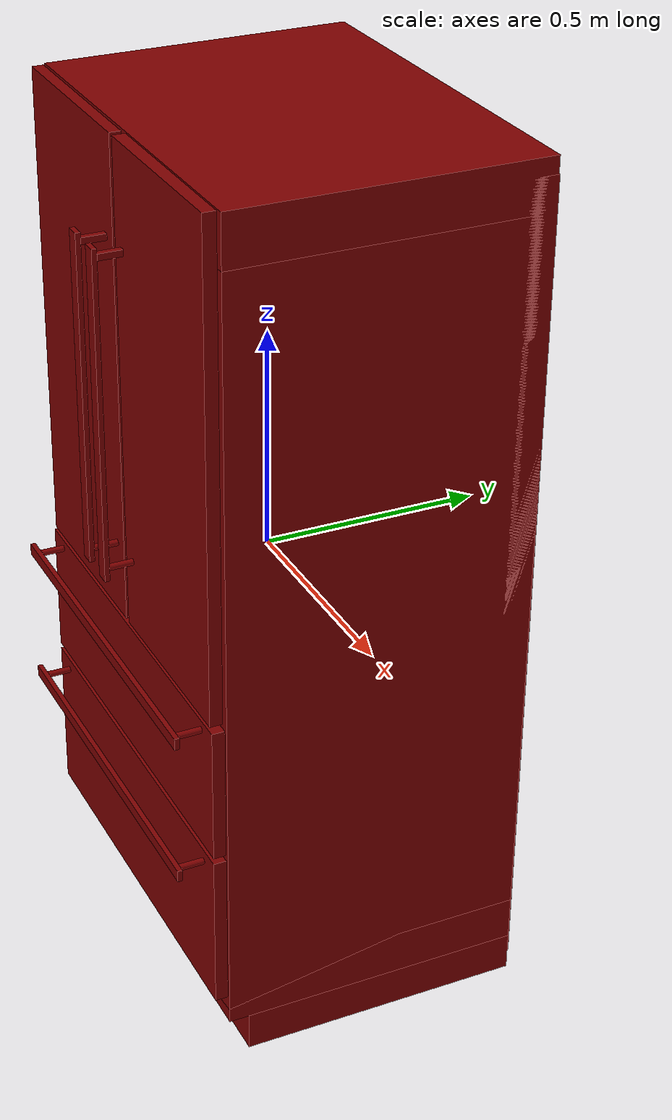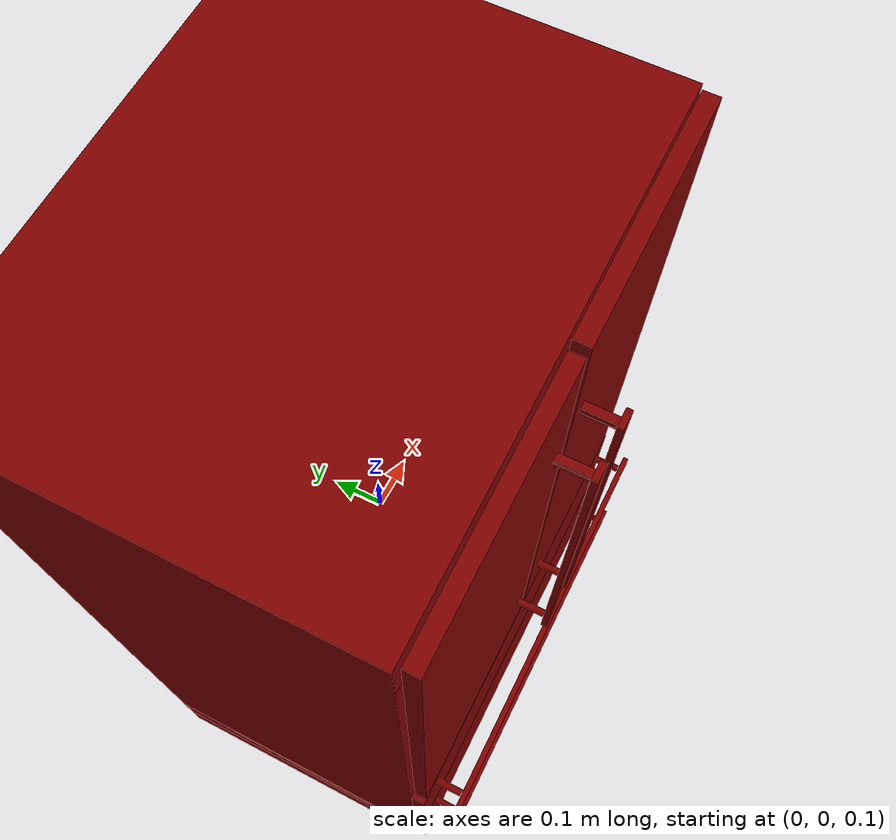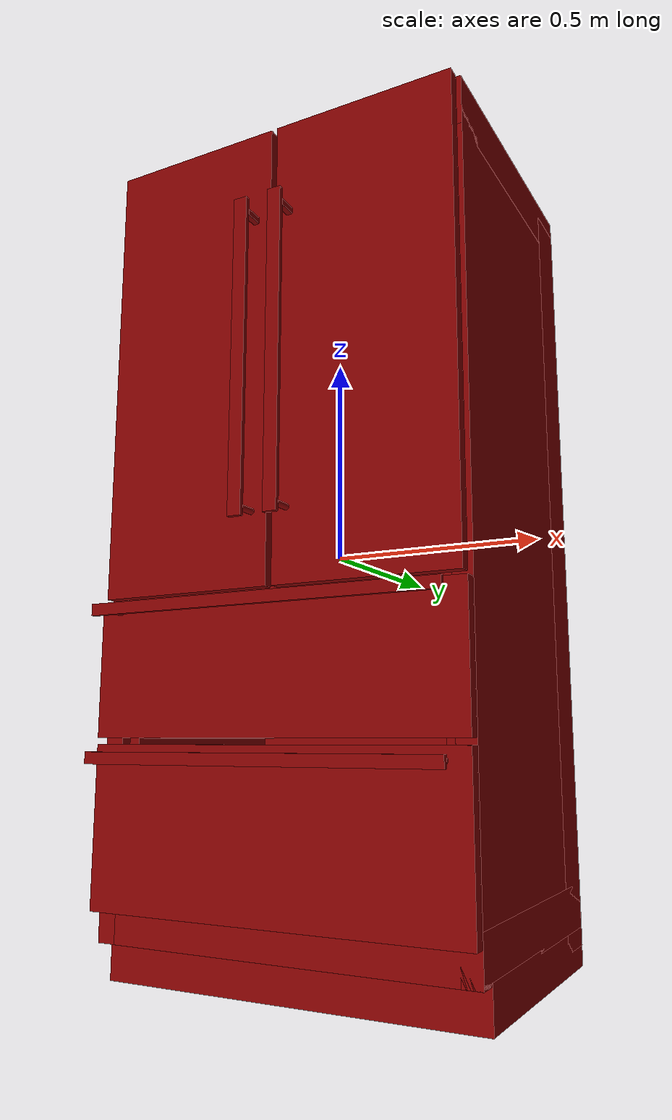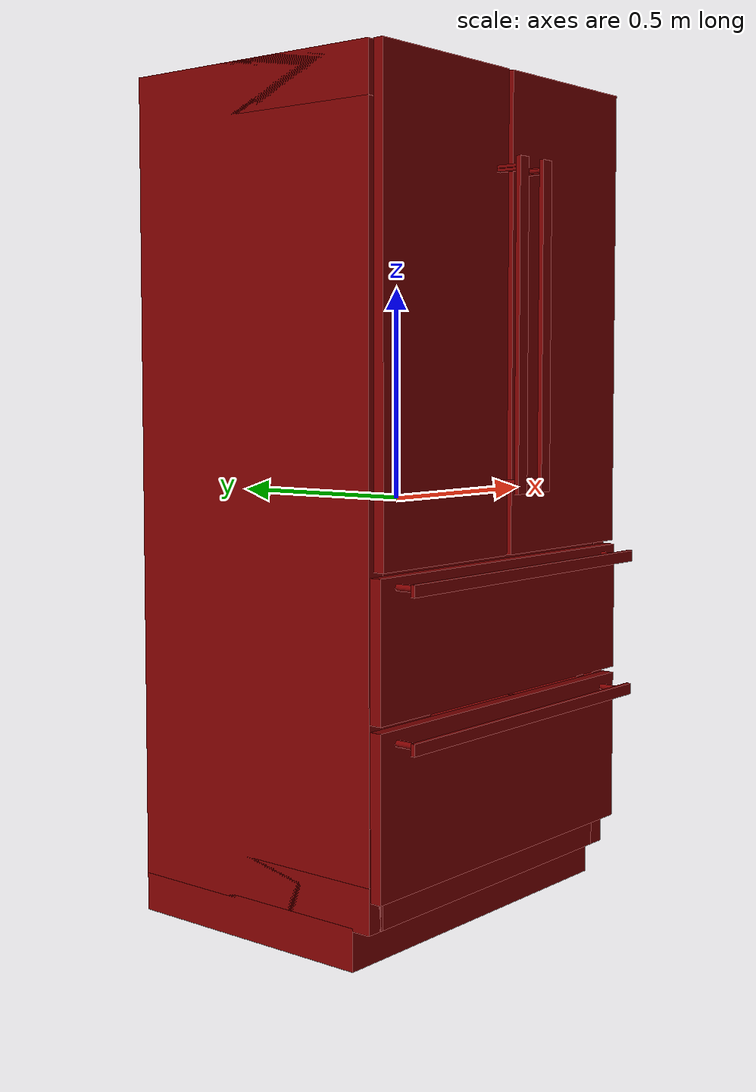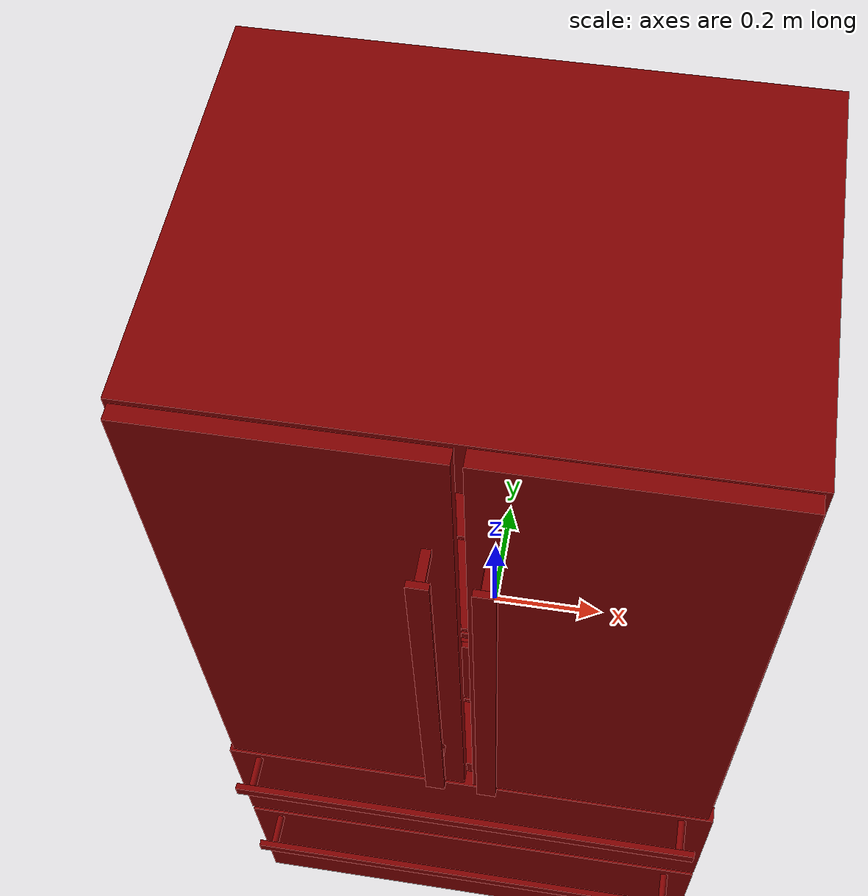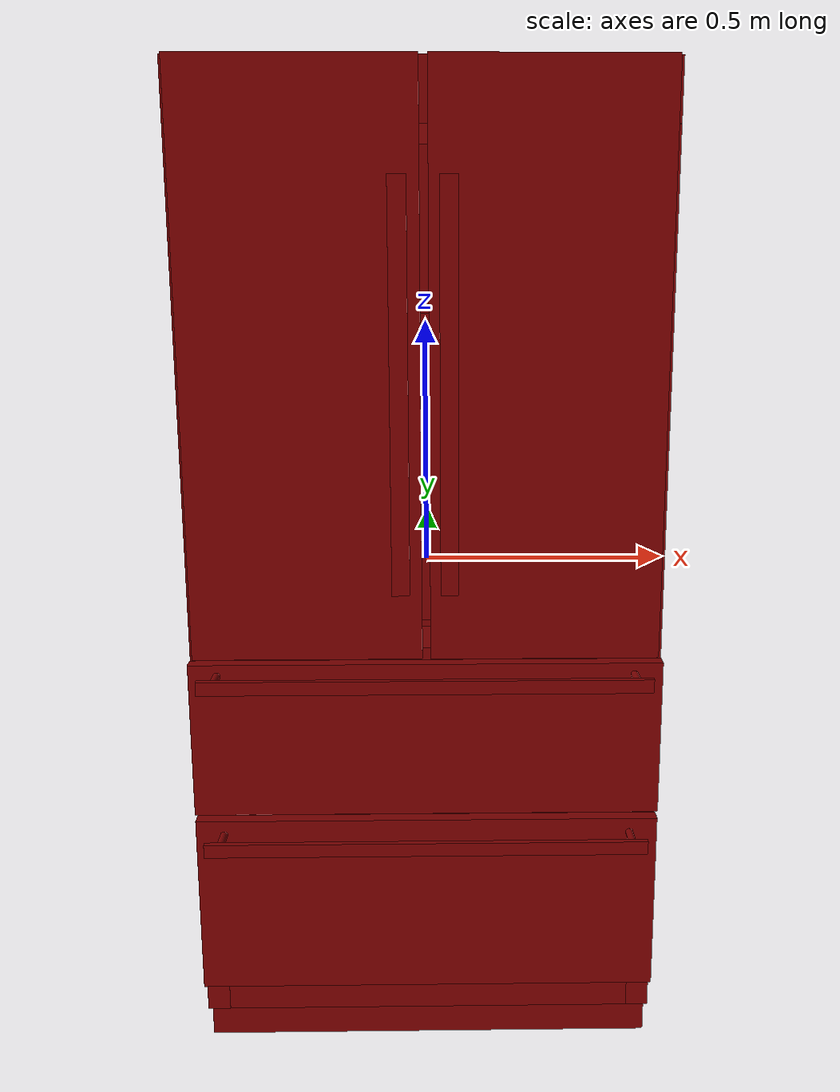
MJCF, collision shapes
<?xml version='1.0' encoding='UTF-8'?>
<mujoco model="model">
  <option timestep="0.002" gravity="0.0 0.0 -9.81"/>
  <compiler angle="radian"/>
  <asset>
    <mesh file="visuals/freezer0.obj" name="freezer0_vis"/>
    <mesh file="visuals/freezer1.obj" name="freezer1_vis"/>
    <mesh file="visuals/fridge_drawer0.obj" name="fridge_drawer0_vis"/>
    <mesh file="visuals/fridge_left_door.obj" name="fridge_left_door_vis"/>
    <mesh file="visuals/fridge_left_door_Clear.obj" name="fridge_left_door_Clear_vis"/>
    <mesh file="visuals/fridge_right_door.obj" name="fridge_right_door_vis"/>
    <mesh file="visuals/fridge_right_door_Clear.obj" name="fridge_right_door_Clear_vis"/>
    <mesh file="visuals/Body001.obj" name="Body001_vis"/>
    <mesh file="visuals/Body001_Clear.obj" name="Body001_Clear_vis"/>
    <texture file="visuals/T_BC001.png" name="Body001_material" type="2d"/>
    <material name="Body001_material" rgba="1 1 1 1.0" texture="Body001_material" shininess="0.141421377658844" specular="5"/>
    <texture file="visuals/T_BC001.png" name="freezer0_material" type="2d"/>
    <material name="freezer0_material" rgba="1 1 1 1.0" texture="freezer0_material" shininess="0.141421377658844" specular="5"/>
    <texture file="visuals/T_BC001.png" name="freezer1_material" type="2d"/>
    <material name="freezer1_material" rgba="1 1 1 1.0" texture="freezer1_material" shininess="0.141421377658844" specular="5"/>
    <texture file="visuals/T_BC001.png" name="fridge_drawer0_material" type="2d"/>
    <material name="fridge_drawer0_material" rgba="1 1 1 1.0" texture="fridge_drawer0_material" shininess="0.141421377658844" specular="5"/>
    <texture file="visuals/T_BC001.png" name="fridge_left_door_material" type="2d"/>
    <material name="fridge_left_door_material" rgba="1 1 1 1.0" texture="fridge_left_door_material" shininess="0.141421377658844" specular="5"/>
    <material name="fridge_left_door_Clear_material" rgba="0.5882353186607361 0.5882353186607361 0.5882353186607361 0.75" shininess="0.141421377658844" specular="0.3103448502657381"/>
    <texture file="visuals/T_BC001.png" name="fridge_right_door_material" type="2d"/>
    <material name="fridge_right_door_material" rgba="1 1 1 1.0" texture="fridge_right_door_material" shininess="0.141421377658844" specular="5"/>
    <material name="fridge_right_door_Clear_material" rgba="0.5882353186607361 0.5882353186607361 0.5882353186607361 0.75" shininess="0.141421377658844" specular="0.3103448502657381"/>
    <material name="Body001_Clear_material" rgba="0.5882353186607361 0.5882353186607361 0.5882353186607361 0.75" shininess="0.141421377658844" specular="0.3103448502657381"/>
  </asset>
  <default>
    <default class="visual">
      <geom conaffinity="0" contype="0" group="1" type="mesh"/>
    </default>
    <default class="collision">
      <geom group="0" rgba="0.5 0 0 0.5"/>
    </default>
    <default class="spawn">
      <geom group="0" rgba="1 1 1 0.5" contype="0" conaffinity="0"/>
      <site group="0" rgba="1 1 1 0.5"/>
    </default>
    <default class="region">
      <geom group="1" conaffinity="0" contype="0" rgba="0 1 0 0"/>
    </default>
  </default>
  <worldbody>
    <body>
      <body name="object">
        <geom mesh="Body001_vis" type="mesh" solimp="0.998 0.998 0.001" solref="0.001 1" friction="0.95 0.3 0.1" class="visual" material="Body001_material"/>
        <geom class="collision" type="box" pos="-0.00000499 0.06904030 -0.92711384" size="0.45515915751457214 0.3218735456466675 0.04788675159215927" quat="1.0 0.0 0.0 0.0"/>
        <geom class="collision" type="box" pos="-0.00000499 0.04634929 -0.83466471" size="0.45515915751457214 0.3445645868778229 0.05128457769751549" quat="1.0 0.0 0.0 0.0"/>
        <geom class="collision" type="box" pos="-0.40396725 0.05348483 -0.49318857" size="0.020160051062703133 0.3253287374973297 0.32951804995536804" quat="1.0 0.0 0.0 0.0"/>
        <geom class="collision" type="box" pos="0.43266017 0.04634929 0.04452716" size="0.022493960335850716 0.3445645868778229 0.9304587841033936" quat="1.0 0.0 0.0 0.0"/>
        <geom class="collision" type="box" pos="0.40167371 0.05809135 -0.49318857" size="0.020160051062703133 0.3299352526664734 0.32951825857162476" quat="1.0 0.0 0.0 0.0"/>
        <geom class="collision" type="box" pos="0.00339195 0.04474565 -0.14025397" size="0.43552544713020325 0.34082457423210144 0.03765507787466049" quat="1.0 0.0 0.0 0.0"/>
        <geom class="collision" type="box" pos="-0.43253189 0.04634929 0.04452704" size="0.022632241249084473 0.3445645868778229 0.9304593801498413" quat="1.0 0.0 0.0 0.0"/>
        <geom class="collision" type="box" pos="0.01544402 0.33064136 0.00424170" size="0.4397101402282715 0.06254047155380249 0.9322079420089722" quat="1.0 0.0 0.0 0.0"/>
        <geom class="collision" type="box" pos="-0.25343033 0.38506525 -0.71198882" size="0.07493435591459274 0.014434418641030788 0.03804784268140793" quat="1.0 0.0 0.0 0.0"/>
        <geom class="collision" type="box" pos="0.36359767 -0.00895843 -0.42745955" size="0.028669632971286774 0.24467833340168 0.007983226329088211" quat="1.0 0.0 0.0 0.0"/>
        <geom class="collision" type="box" pos="-0.36292549 -0.00895843 -0.42745955" size="0.028669632971286774 0.24467833340168 0.007983222603797913" quat="1.0 0.0 0.0 0.0"/>
        <geom class="collision" type="box" pos="0.40963034 -0.01564666 0.20274130" size="0.004460358526557684 0.25136658549308777 0.004059662111103535" quat="1.0 0.0 0.0 0.0"/>
        <geom class="collision" type="box" pos="0.40963034 -0.01564666 0.23742401" size="0.004460358526557684 0.25136658549308777 0.0040596602484583855" quat="1.0 0.0 0.0 0.0"/>
        <geom class="collision" type="box" pos="0.40963034 -0.01564666 0.27763568" size="0.004460358526557684 0.25136658549308777 0.004059658385813236" quat="1.0 0.0 0.0 0.0"/>
        <geom class="collision" type="box" pos="0.40963034 -0.01564666 0.31665259" size="0.004460358526557684 0.25136658549308777 0.004059656523168087" quat="1.0 0.0 0.0 0.0"/>
        <geom class="collision" type="box" pos="0.40963034 -0.01564666 0.35570436" size="0.004460358526557684 0.25136658549308777 0.004059654660522938" quat="1.0 0.0 0.0 0.0"/>
        <geom class="collision" type="box" pos="0.40963034 -0.01564666 0.39586570" size="0.004460358526557684 0.25136658549308777 0.0040596527978777885" quat="1.0 0.0 0.0 0.0"/>
        <geom class="collision" type="box" pos="0.40963034 -0.01564666 0.43635409" size="0.004460358526557684 0.25136658549308777 0.004059650935232639" quat="1.0 0.0 0.0 0.0"/>
        <geom class="collision" type="box" pos="0.40963034 -0.01564666 0.47698673" size="0.004460358526557684 0.25136658549308777 0.00405964907258749" quat="1.0 0.0 0.0 0.0"/>
        <geom class="collision" type="box" pos="0.40963034 -0.01564666 0.51714980" size="0.004460358526557684 0.25136658549308777 0.004059647209942341" quat="1.0 0.0 0.0 0.0"/>
        <geom class="collision" type="box" pos="0.40963034 -0.01564666 0.55876904" size="0.004460358526557684 0.25136658549308777 0.004059645347297192" quat="1.0 0.0 0.0 0.0"/>
        <geom class="collision" type="box" pos="0.40963034 -0.01564666 0.60047214" size="0.004460358526557684 0.25136658549308777 0.004059643484652042" quat="1.0 0.0 0.0 0.0"/>
        <geom class="collision" type="box" pos="0.40963034 -0.01564666 0.64060520" size="0.004460358526557684 0.25136658549308777 0.004059641622006893" quat="1.0 0.0 0.0 0.0"/>
        <geom class="collision" type="box" pos="-0.40944725 -0.01564666 0.20274130" size="0.004460358526557684 0.25136658549308777 0.004059639759361744" quat="1.0 0.0 0.0 0.0"/>
        <geom class="collision" type="box" pos="-0.40944725 -0.01564666 0.23742401" size="0.004460358526557684 0.25136658549308777 0.004059637896716595" quat="1.0 0.0 0.0 0.0"/>
        <geom class="collision" type="box" pos="-0.40944725 -0.01564666 0.27763568" size="0.004460358526557684 0.25136658549308777 0.0040596360340714455" quat="1.0 0.0 0.0 0.0"/>
        <geom class="collision" type="box" pos="-0.40944725 -0.01564666 0.31665259" size="0.004460358526557684 0.25136658549308777 0.004059634171426296" quat="1.0 0.0 0.0 0.0"/>
        <geom class="collision" type="box" pos="-0.40944725 -0.01564666 0.35570436" size="0.004460358526557684 0.25136658549308777 0.004059632308781147" quat="1.0 0.0 0.0 0.0"/>
        <geom class="collision" type="box" pos="-0.40944725 -0.01564666 0.39586570" size="0.004460358526557684 0.25136658549308777 0.004059630446135998" quat="1.0 0.0 0.0 0.0"/>
        <geom class="collision" type="box" pos="-0.40944725 -0.01564666 0.43635409" size="0.004460358526557684 0.25136658549308777 0.0040596285834908485" quat="1.0 0.0 0.0 0.0"/>
        <geom class="collision" type="box" pos="-0.40944725 -0.01564666 0.47698673" size="0.004460358526557684 0.25136658549308777 0.004059626720845699" quat="1.0 0.0 0.0 0.0"/>
        <geom class="collision" type="box" pos="-0.40944725 -0.01564666 0.51714980" size="0.004460358526557684 0.25136658549308777 0.00405962485820055" quat="1.0 0.0 0.0 0.0"/>
        <geom class="collision" type="box" pos="-0.40944725 -0.01564666 0.55876904" size="0.004460358526557684 0.25136658549308777 0.0040596225298941135" quat="1.0 0.0 0.0 0.0"/>
        <geom class="collision" type="box" pos="-0.40944725 -0.01564666 0.60047214" size="0.004460358526557684 0.25136658549308777 0.004059620667248964" quat="1.0 0.0 0.0 0.0"/>
        <geom class="collision" type="box" pos="-0.40944725 -0.01564666 0.64060520" size="0.004460358526557684 0.25136658549308777 0.004059618804603815" quat="1.0 0.0 0.0 0.0"/>
        <geom class="collision" type="box" pos="0.00066255 0.04652771 0.21273636" size="0.41955575346946716 0.22464393079280853 0.004984972067177296" quat="1.0 0.0 0.0 0.0"/>
        <geom class="collision" type="box" pos="0.00066255 0.04652771 0.53087722" size="0.41955575346946716 0.22464393079280853 0.004985080100595951" quat="1.0 0.0 0.0 0.0"/>
        <geom class="collision" type="box" pos="-0.00000497 0.04626915 0.91815971" size="0.45515912771224976 0.344644695520401 0.056838177144527435" quat="1.0 0.0 0.0 0.0"/>
        <geom class="collision" type="box" pos="0.36359767 -0.00895843 -0.77612943" size="0.028669632971286774 0.24467833340168 0.007983040995895863" quat="1.0 0.0 0.0 0.0"/>
        <geom class="collision" type="box" pos="-0.36292549 -0.00895843 -0.77586646" size="0.028669632971286774 0.24467833340168 0.007983037270605564" quat="1.0 0.0 0.0 0.0"/>
        <body name="freezer0">
          <geom class="region" name="reg_freezer0" type="box" pos="-5.0925000000007214e-05 -0.060570170000000007 -0.640081385" size="0.35843996499999997 0.23538181 0.11076126500000005"/>
          <joint axis="0.0 -1.0 0.0" pos="0.00000030 -0.10067922 -0.62808896" limited="true" name="freezer0_door_joint" range="0.0 0.4" type="slide" damping="1" frictionloss="1" armature=".01" stiffness="0.05"/>
          <geom mesh="freezer0_vis" type="mesh" solimp="0.998 0.998 0.001" solref="0.001 1" friction="0.95 0.3 0.1" class="visual" material="freezer0_material"/>
          <geom class="collision" type="cylinder" pos="0.40032012 -0.35740274 -0.47810481" size="0.0072952997870743275 0.028688108548521996" quat="0.7071067094802856 0.7071068286895752 0.0 0.0"/>
          <geom class="collision" type="cylinder" pos="-0.40030270 -0.35740274 -0.47813574" size="0.0072952997870743275 0.028688108548521996" quat="0.7071067094802856 0.7071068286895752 0.0 0.0"/>
          <geom class="collision" type="box" pos="-0.00074692 -0.39388210 -0.47834138" size="0.4277200698852539 0.005618114024400711 0.013253210112452507" quat="1.0 0.0 0.0 0.0"/>
          <geom class="collision" type="box" pos="-0.00000501 -0.31623912 -0.63169319" size="0.45515909790992737 0.014260848052799702 0.18250882625579834" quat="1.0 0.0 0.0 0.0"/>
          <geom class="collision" type="box" pos="-0.00028149 0.19010505 -0.64594276" size="0.37862294912338257 0.009886136278510094 0.12147098034620285" quat="1.0 0.0 0.0 0.0"/>
          <geom class="collision" type="box" pos="0.37078906 -0.06169401 -0.64594276" size="0.007692841812968254 0.2443414032459259 0.12147103995084763" quat="1.0 0.0 0.0 0.0"/>
          <geom class="collision" type="box" pos="-0.37097194 -0.06169401 -0.64594276" size="0.007385795470327139 0.2443414032459259 0.1214710921049118" quat="1.0 0.0 0.0 0.0"/>
          <geom class="collision" type="box" pos="-0.00022278 -0.05993126 -0.76237584" size="0.37868162989616394 0.24510401487350464 0.005039231386035681" quat="1.0 0.0 0.0 0.0"/>
        </body>
        <body name="freezer1">
          <geom class="region" name="reg_freezer1" type="box" pos="-5.0925000000007214e-05 -0.060570170000000007 -0.2961042" size="0.35843996499999997 0.23538181 0.10637835999999999"/>
          <joint axis="0.0 -1.0 0.0" pos="0.00000114 -0.10067925 -0.28205300" limited="true" name="freezer1_door_joint" range="0.0 0.4" type="slide" damping="1" frictionloss="1" armature=".01" stiffness="0.05"/>
          <geom mesh="freezer1_vis" type="mesh" solimp="0.998 0.998 0.001" solref="0.001 1" friction="0.95 0.3 0.1" class="visual" material="freezer1_material"/>
          <geom class="collision" type="box" pos="-0.00022278 -0.05993126 -0.41393949" size="0.37868162989616394 0.24510401487350464 0.00503923324868083" quat="1.0 0.0 0.0 0.0"/>
          <geom class="collision" type="box" pos="-0.37062331 -0.06169401 -0.30155505" size="0.007623842917382717 0.2443414032459259 0.11742319166660309" quat="1.0 0.0 0.0 0.0"/>
          <geom class="collision" type="box" pos="0.37147323 -0.06169401 -0.30155505" size="0.007008669897913933 0.2443414032459259 0.11742321401834488" quat="1.0 0.0 0.0 0.0"/>
          <geom class="collision" type="box" pos="-0.00028149 0.19010505 -0.30155505" size="0.37862294912338257 0.009886136278510094 0.11742324382066727" quat="1.0 0.0 0.0 0.0"/>
          <geom class="collision" type="box" pos="-0.00000501 -0.31623912 -0.27999012" size="0.45515909790992737 0.014260849915444851 0.15482380986213684" quat="1.0 0.0 0.0 0.0"/>
          <geom class="collision" type="box" pos="-0.00074691 -0.39388210 -0.14780122" size="0.4277200698852539 0.005618114024400711 0.013253247365355492" quat="1.0 0.0 0.0 0.0"/>
          <geom class="collision" type="cylinder" pos="-0.40030270 -0.35740274 -0.14759556" size="0.0072952997870743275 0.028688108548521996" quat="0.7071067094802856 0.7071068286895752 0.0 0.0"/>
          <geom class="collision" type="cylinder" pos="0.40032012 -0.35740274 -0.14756463" size="0.0072952997870743275 0.028688108548521996" quat="0.7071067094802856 0.7071068286895752 0.0 0.0"/>
        </body>
        <body name="fridge_drawer0">
          <geom class="region" name="reg_fridge_drawer0" type="box" pos="0.0011472349999999965 0.01543543 0.053015124999999996" size="0.36405786500000004 0.17307504 0.132494735"/>
          <joint axis="0.0 -1.0 0.0" pos="0.00002614 0.02300973 0.05023600" limited="true" name="fridge_drawer0_joint" range="0.0 0.4" type="slide" damping="1" frictionloss="1" armature=".01" stiffness="0.05"/>
          <geom mesh="fridge_drawer0_vis" type="mesh" solimp="0.998 0.998 0.001" solref="0.001 1" friction="0.95 0.3 0.1" class="visual" material="fridge_drawer0_material"/>
          <geom class="collision" type="box" pos="-0.00015614 0.00976306 -0.09072960" size="0.38103702664375305 0.18678787350654602 0.006469025742262602" quat="1.0 0.0 0.0 0.0"/>
          <geom class="collision" type="box" pos="0.37653208 0.01718861 0.05379304" size="0.006826857570558786 0.19421342015266418 0.13777042925357819" quat="1.0 0.0 0.0 0.0"/>
          <geom class="collision" type="box" pos="-0.37563592 0.01718861 0.05379304" size="0.006944672204554081 0.19421342015266418 0.13777042925357819" quat="1.0 0.0 0.0 0.0"/>
          <geom class="collision" type="box" pos="-0.00015614 0.20398035 0.05197353" size="0.38103702664375305 0.01000561099499464 0.13776469230651855" quat="1.0 0.0 0.0 0.0"/>
          <geom class="collision" type="box" pos="-0.25717538 -0.16836593 0.05197352" size="0.12401777505874634 0.005322454497218132 0.13776473701000214" quat="1.0 0.0 0.0 0.0"/>
          <geom class="collision" type="box" pos="0.24988668 -0.16836593 0.05197353" size="0.12520968914031982 0.005322454497218132 0.1377647966146469" quat="1.0 0.0 0.0 0.0"/>
          <geom class="collision" type="box" pos="-0.00449903 -0.16836593 0.02422493" size="0.13099119067192078 0.005322454497218132 0.11001637578010559" quat="1.0 0.0 0.0 0.0"/>
          <geom class="collision" type="box" pos="-0.00449903 -0.16836593 0.18105649" size="0.13099119067192078 0.005322454497218132 0.008587488904595375" quat="1.0 0.0 0.0 0.0"/>
        </body>
        <body name="fridge_left_door">
          <joint axis="0.0 0.0 -1.0" pos="-0.43957209 -0.31435257 0.42758631" limited="true" name="fridge_left_door_joint" range="0.0 1.5707963267948966" type="hinge" damping="1" frictionloss="1" armature=".01" stiffness="0.05"/>
          <geom mesh="fridge_left_door_vis" type="mesh" solimp="0.998 0.998 0.001" solref="0.001 1" friction="0.95 0.3 0.1" class="visual" material="fridge_left_door_material"/>
          <geom class="collision" type="box" pos="-0.20603823 -0.22966728 0.75564926" size="0.16827824711799622 0.04765574634075165 0.004487918224185705" quat="1.0 0.0 0.0 0.0"/>
          <geom class="collision" type="box" pos="-0.20603823 -0.22966728 0.46200850" size="0.16827824711799622 0.04765574634075165 0.004487957339733839" quat="1.0 0.0 0.0 0.0"/>
          <geom class="collision" type="box" pos="-0.22008301 -0.22966728 0.29002427" size="0.18232300877571106 0.04765574634075165 0.004487939644604921" quat="1.0 0.0 0.0 0.0"/>
          <geom class="collision" type="box" pos="-0.22633884 -0.31712097 0.43027373" size="0.21931464970111847 0.012689352035522461 0.5447179675102234" quat="1.0 0.0 0.0 0.0" name="fridge_left_door_main"/>
          <geom class="collision" type="box" pos="-0.04470110 -0.39379001 0.40204703" size="0.016507267951965332 0.005618056282401085 0.3714064359664917" quat="1.0 0.0 0.0 0.0" name="fridge_left_door_handle_main"/>
          <geom class="collision" type="box" pos="-0.04474109 -0.36019016 0.75063955" size="0.007295374758541584 0.03156791999936104 0.007295379880815744" quat="1.0 0.0 0.0 0.0"/>
          <geom class="collision" type="cylinder" pos="-0.04482481 -0.35725305 0.75063955" size="0.0072952997870743275 0.028630513697862625" quat="0.7071067094802856 0.7071068286895752 0.0 0.0" name="fridge_left_door_handle_1"/>
          <geom class="collision" type="cylinder" pos="-0.04493519 -0.35725305 0.05417837" size="0.0072952997870743275 0.028630513697862625" quat="0.7071067094802856 0.7071068286895752 0.0 0.0" name="fridge_left_door_handle_2"/>
          <geom class="collision" type="box" pos="-0.21982921 -0.18519008 0.76155185" size="0.1722746342420578 0.004940989892929792 0.019982893019914627" quat="1.0 0.0 0.0 0.0"/>
          <geom class="collision" type="box" pos="-0.04674715 -0.22398186 0.76155757" size="0.009039727970957756 0.03427697345614433 0.019487781450152397" quat="0.9945219159126282 0.0 0.0 0.10452846437692642"/>
          <geom class="collision" type="box" pos="-0.04146580 -0.24882865 0.79054653" size="0.009039727039635181 0.009492472745478153 0.011506680399179459" quat="0.9945219159126282 0.0 0.0 0.10452846437692642"/>
          <geom class="collision" type="box" pos="-0.04563043 -0.22923559 0.78853231" size="0.009039727039635181 0.010747063905000687 0.009492485783994198" quat="0.9945219159126282 0.0 0.0 0.10452846437692642"/>
          <geom class="collision" type="box" pos="-0.05007607 -0.20832052 0.78425836" size="0.009039727039635181 0.01101016066968441 0.005218466743826866" quat="0.9945219159126282 0.0 0.0 0.10452846437692642"/>
          <geom class="collision" type="box" pos="-0.05399551 -0.20113817 0.79940396" size="0.0024133336264640093 0.002413333859294653 0.01875714398920536" quat="0.7049269676208496 0.7049270272254944 0.05547899752855301 0.05547899752855301"/>
          <geom class="collision" type="box" pos="-0.22114658 -0.18520499 0.79940396" size="0.1683313250541687 0.0024133254773914814 0.00241334130987525" quat="1.0 0.0 0.0 0.0"/>
          <geom class="collision" type="box" pos="-0.39947664 -0.20191703 0.79949366" size="0.002413333859294653 0.002413333859294653 0.01649571768939495" quat="0.7032331824302673 0.7032331824302673 -0.07391279190778732 -0.07391278445720673"/>
          <geom class="collision" type="box" pos="-0.40195330 -0.21791926 0.79330002" size="0.0024133340921252966 0.0024133340921252966 0.004603476729243994" quat="0.12120170891284943 0.9871088862419128 -0.10374932736158371 -0.012738813646137714"/>
          <geom class="collision" type="box" pos="-0.05098117 -0.21791926 0.79332953" size="0.0024133340921252966 0.002413333859294653 0.004603412002325058" quat="0.12814365327358246 0.9838157296180725 -0.11195120215415955 0.056149452924728394"/>
          <geom class="collision" type="box" pos="-0.21982921 -0.18519008 0.46928807" size="0.1722746342420578 0.004940989892929792 0.019982893019914627" quat="1.0 0.0 0.0 0.0"/>
          <geom class="collision" type="box" pos="-0.04751198 -0.22398186 0.46929379" size="0.009039727970957756 0.03427697345614433 0.019487781450152397" quat="0.9945219159126282 0.0 0.0 0.10452846437692642"/>
          <geom class="collision" type="box" pos="-0.04252807 -0.24882865 0.49828275" size="0.009039727039635181 0.009492472745478153 0.011506680399179459" quat="0.9945219159126282 0.0 0.0 0.10452846437692642"/>
          <geom class="collision" type="box" pos="-0.04563043 -0.22923559 0.49626853" size="0.009039727039635181 0.010747063905000687 0.009492485783994198" quat="0.9945219159126282 0.0 0.0 0.10452846437692642"/>
          <geom class="collision" type="box" pos="-0.05007607 -0.20832052 0.49199458" size="0.009039727039635181 0.01101016066968441 0.005218499340116978" quat="0.9945219159126282 0.0 0.0 0.10452846437692642"/>
          <geom class="collision" type="box" pos="-0.05399551 -0.20113817 0.50714021" size="0.0024133336264640093 0.002413333859294653 0.01875714398920536" quat="0.7049269676208496 0.7049270272254944 0.05547899752855301 0.05547899752855301"/>
          <geom class="collision" type="box" pos="-0.22501650 -0.18520499 0.50714021" size="0.1698637753725052 0.0024133629631251097 0.0024133645929396152" quat="1.0 0.0 0.0 0.0"/>
          <geom class="collision" type="box" pos="-0.39947664 -0.20191703 0.50722985" size="0.002413333859294653 0.002413333859294653 0.01649571768939495" quat="0.7032331824302673 0.7032331824302673 -0.07391279190778732 -0.07391278445720673"/>
          <geom class="collision" type="box" pos="-0.40195330 -0.21791926 0.50103622" size="0.0024133340921252966 0.0024133340921252966 0.004603444132953882" quat="0.12120170891284943 0.9871088862419128 -0.10374932736158371 -0.012738813646137714"/>
          <geom class="collision" type="box" pos="-0.05098117 -0.21791926 0.50106578" size="0.0024133340921252966 0.002413333859294653 0.004603444132953882" quat="0.12814365327358246 0.9838157296180725 -0.11195120215415955 0.056149452924728394"/>
          <geom class="collision" type="box" pos="-0.21982921 -0.18519008 0.29571467" size="0.1722746342420578 0.004940989892929792 0.018948551267385483" quat="1.0 0.0 0.0 0.0"/>
          <geom class="collision" type="box" pos="-0.04674715 -0.22398186 0.29572039" size="0.009039727970957756 0.03427697345614433 0.018453411757946014" quat="0.9945219159126282 0.0 0.0 0.10452846437692642"/>
          <geom class="collision" type="box" pos="-0.04146580 -0.24882865 0.32219755" size="0.009039727039635181 0.009492472745478153 0.011506680399179459" quat="0.9945219159126282 0.0 0.0 0.10452846437692642"/>
          <geom class="collision" type="box" pos="-0.04563043 -0.22923559 0.32166075" size="0.009039727039635181 0.010747063905000687 0.009492485783994198" quat="0.9945219159126282 0.0 0.0 0.10452846437692642"/>
          <geom class="collision" type="box" pos="-0.05007607 -0.20832052 0.31738680" size="0.009039727039635181 0.01101016066968441 0.005218483041971922" quat="0.9945219159126282 0.0 0.0 0.10452846437692642"/>
          <geom class="collision" type="box" pos="-0.05399551 -0.20113817 0.33253246" size="0.0024133336264640093 0.002413333859294653 0.01875714398920536" quat="0.7049269676208496 0.7049270272254944 0.05547899752855301 0.05547899752855301"/>
          <geom class="collision" type="box" pos="-0.22623814 -0.18520499 0.33253243" size="0.16833147406578064 0.0024133266415446997 0.00241334130987525" quat="1.0 0.0 0.0 0.0"/>
          <geom class="collision" type="box" pos="-0.39947664 -0.19979929 0.33262207" size="0.002413333859294653 0.002413333859294653 0.01649571768939495" quat="0.7032331824302673 0.7032331824302673 -0.07391279190778732 -0.07391278445720673"/>
          <geom class="collision" type="box" pos="-0.40195330 -0.21791926 0.32642843" size="0.0024133340921252966 0.0024133340921252966 0.004603444132953882" quat="0.12120170891284943 0.9871088862419128 -0.10374932736158371 -0.012738813646137714"/>
          <geom class="collision" type="box" pos="-0.05098117 -0.21791926 0.32645803" size="0.0024133340921252966 0.002413333859294653 0.004603444132953882" quat="0.12814365327358246 0.9838157296180725 -0.11195120215415955 0.056149452924728394"/>
          <geom class="collision" type="box" pos="-0.05488781 -0.19444813 0.32450440" size="0.0024133333936333656 0.002413333859294653 0.011471705511212349" quat="0.7049269676208496 0.7049270272254944 0.05547899752855301 0.05547899752855301"/>
          <geom class="collision" type="box" pos="-0.22645337 -0.18541625 0.32450440" size="0.16833151876926422 0.0024133268743753433 0.00241334130987525" quat="1.0 0.0 0.0 0.0"/>
          <geom class="collision" type="box" pos="-0.39771991 -0.19306626 0.32459404" size="0.0024133336264640093 0.002413333859294653 0.009272079914808273" quat="0.7032331824302673 0.7032331824302673 -0.07391279190778732 -0.07391278445720673"/>
          <geom class="collision" type="box" pos="-0.39957785 -0.20571223 0.31992941" size="0.0024133343249559402 0.0024133336264640093 0.005534749943763018" quat="0.290770024061203 0.9510660171508789 -0.09996101260185242 -0.030561087653040886"/>
          <geom class="collision" type="box" pos="-0.05345644 -0.20524340 0.31842997" size="0.0024133340921252966 0.002413333859294653 0.004603444132953882" quat="0.12814365327358246 0.9838157296180725 -0.11195120215415955 0.056149452924728394"/>
          <body name="fridge_left_door_Clear">
            <geom mesh="fridge_left_door_Clear_vis" type="mesh" solimp="0.998 0.998 0.001" solref="0.001 1" friction="0.95 0.3 0.1" class="visual" material="fridge_left_door_Clear_material"/>
            <geom class="collision" type="box" pos="-0.20603823 -0.22966728 0.75564926" size="0.16827824711799622 0.04765574634075165 0.004487918224185705" quat="1.0 0.0 0.0 0.0"/>
            <geom class="collision" type="box" pos="-0.20603823 -0.22966728 0.46200850" size="0.16827824711799622 0.04765574634075165 0.004487957339733839" quat="1.0 0.0 0.0 0.0"/>
            <geom class="collision" type="box" pos="-0.22008301 -0.22966728 0.29002427" size="0.18232300877571106 0.04765574634075165 0.004487939644604921" quat="1.0 0.0 0.0 0.0"/>
          </body>
        </body>
        <body name="fridge_right_door">
          <joint axis="0.0 0.0 1.0" pos="0.43878413 -0.31472031 0.42758568" limited="true" name="fridge_right_door_joint" range="0.0 1.5707963267948966" type="hinge" damping="1" frictionloss="1" armature=".01" stiffness="0.05"/>
          <geom mesh="fridge_right_door_vis" type="mesh" solimp="0.998 0.998 0.001" solref="0.001 1" friction="0.95 0.3 0.1" class="visual" material="fridge_right_door_material"/>
          <geom class="collision" type="box" pos="0.20472228 -0.23048100 0.75564926" size="0.16738037765026093 0.04693411663174629 0.004487938247621059" quat="1.0 0.0 0.0 0.0"/>
          <geom class="collision" type="box" pos="0.20472228 -0.23048100 0.46200850" size="0.16738037765026093 0.04693411663174629 0.004487977363169193" quat="1.0 0.0 0.0 0.0"/>
          <geom class="collision" type="box" pos="0.22081292 -0.23048100 0.29002427" size="0.18347102403640747 0.04693411663174629 0.004487964324653149" quat="1.0 0.0 0.0 0.0"/>
          <geom class="collision" type="box" pos="0.04180882 -0.24703080 0.79054653" size="0.009039727039635181 0.009492472745478153 0.011506680399179459" quat="0.9902509450912476 0.0 -0.0 -0.13929469883441925"/>
          <geom class="collision" type="box" pos="0.04881655 -0.22261465 0.76155757" size="0.009039727970957756 0.03427696228027344 0.019487781450152397" quat="0.9902509450912476 0.0 -0.0 -0.13929469883441925"/>
          <geom class="collision" type="box" pos="0.22451410 -0.18672543 0.76155185" size="0.17259478569030762 0.004940989892929792 0.019982893019914627" quat="1.0 0.0 0.0 0.0"/>
          <geom class="collision" type="cylinder" pos="0.04518983 -0.35734514 0.05417837" size="0.0072952997870743275 0.028630513697862625" quat="0.7071067094802856 0.7071068286895752 0.0 0.0" name="fridge_right_door_handle_1"/>
          <geom class="collision" type="box" pos="0.04524629 -0.36028225 0.75063955" size="0.007295353803783655 0.03156783804297447 0.0072953589260578156" quat="1.0 0.0 0.0 0.0"/>
          <geom class="collision" type="box" pos="0.39120702 -0.20677874 0.31842997" size="0.0024133340921252966 0.002413333859294653 0.004603444132953882" quat="0.12814365327358246 0.9838157296180725 -0.11195120215415955 0.056149452924728394"/>
          <geom class="collision" type="box" pos="0.05392709 -0.20724757 0.31992941" size="0.0024133343249559402 0.0024133336264640093 0.005534749943763018" quat="0.290770024061203 0.9510660171508789 -0.09996101260185242 -0.030561087653040886"/>
          <geom class="collision" type="box" pos="0.05578502 -0.19460160 0.32459404" size="0.0024133336264640093 0.002413333859294653 0.009272079914808273" quat="0.7032331824302673 0.7032331824302673 -0.07391279190778732 -0.07391278445720673"/>
          <geom class="collision" type="cylinder" pos="0.04349943 -0.35734514 0.75063955" size="0.0072952997870743275 0.028630513697862625" quat="0.7071067094802856 0.7071068286895752 0.0 0.0" name="fridge_right_door_handle_2"/>
          <geom class="collision" type="box" pos="0.22319672 -0.18695160 0.32450440" size="0.16865190863609314 0.0024133287370204926 0.00241334130987525" quat="1.0 0.0 0.0 0.0"/>
          <geom class="collision" type="box" pos="0.38977561 -0.19598347 0.32450440" size="0.0024133336264640093 0.002413333859294653 0.011471705511212349" quat="0.7049269676208496 0.7049270272254944 0.05547899752855301 0.05547899752855301"/>
          <geom class="collision" type="box" pos="0.39316136 -0.21945459 0.32645803" size="0.0024133340921252966 0.002413333859294653 0.004603444132953882" quat="0.12814365327358246 0.9838157296180725 -0.11195120215415955 0.056149452924728394"/>
          <geom class="collision" type="box" pos="0.05155166 -0.21945462 0.32642843" size="0.0024133340921252966 0.0024133340921252966 0.004603444132953882" quat="0.12120170891284943 0.9871088862419128 -0.10374932736158371 -0.012738813646137714"/>
          <geom class="collision" type="box" pos="0.05402829 -0.20345237 0.33262207" size="0.002413333859294653 0.002413333859294653 0.01649571768939495" quat="0.7032331824302673 0.7032331824302673 -0.07391279190778732 -0.07391278445720673"/>
          <geom class="collision" type="box" pos="0.22319672 -0.18674033 0.33253243" size="0.16865193843841553 0.002413328969851136 0.00241334130987525" quat="1.0 0.0 0.0 0.0"/>
          <geom class="collision" type="box" pos="0.39066795 -0.20267351 0.33253246" size="0.002413333859294653 0.002413333859294653 0.01875714398920536" quat="0.7049269676208496 0.7049270272254944 0.05547899752855301 0.05547899752855301"/>
          <geom class="collision" type="box" pos="0.05423928 -0.20504129 0.31738680" size="0.009039727039635181 0.01101016066968441 0.005218483041971922" quat="0.987896203994751 0.0 -0.0 -0.1551164835691452"/>
          <geom class="collision" type="box" pos="0.04768605 -0.22539464 0.32166078" size="0.009039727039635181 0.010747063905000687 0.009492485783994198" quat="0.987896203994751 0.0 -0.0 -0.1551164835691452"/>
          <geom class="collision" type="box" pos="0.04154704 -0.24446157 0.32219755" size="0.009039727039635181 0.009492472745478153 0.011506680399179459" quat="0.987896203994751 0.0 -0.0 -0.1551164835691452"/>
          <geom class="collision" type="box" pos="0.04487266 -0.39388210 0.40204703" size="0.016507266089320183 0.005618056282401085 0.3714079260826111" quat="1.0 0.0 0.0 0.0" name="fridge_right_door_handle_main"/>
          <geom class="collision" type="box" pos="0.04933219 -0.22028205 0.29572039" size="0.009039727970957756 0.03427697345614433 0.018453411757946014" quat="0.987896203994751 0.0 -0.0 -0.1551164835691452"/>
          <geom class="collision" type="box" pos="0.22388900 -0.18672543 0.29571467" size="0.17196966707706451 0.004940989892929792 0.018948551267385483" quat="1.0 0.0 0.0 0.0"/>
          <geom class="collision" type="box" pos="0.39309884 -0.21945459 0.50106578" size="0.0024133343249559402 0.002413333859294653 0.004603444132953882" quat="0.12814365327358246 0.9838157296180725 -0.11195120215415955 0.056149452924728394"/>
          <geom class="collision" type="box" pos="0.04942087 -0.21945462 0.50103622" size="0.0024133340921252966 0.0024133340921252966 0.004603444132953882" quat="0.12120170891284943 0.9871088862419128 -0.10374932736158371 -0.012738813646137714"/>
          <geom class="collision" type="box" pos="0.05428064 -0.20345237 0.50722985" size="0.002413333859294653 0.002413333859294653 0.01649571768939495" quat="0.7032331824302673 0.7032331824302673 -0.07391279190778732 -0.07391278445720673"/>
          <geom class="collision" type="box" pos="0.22319672 -0.18674033 0.50714021" size="0.16865205764770508 0.002413329901173711 0.0024133415427058935" quat="1.0 0.0 0.0 0.0"/>
          <geom class="collision" type="box" pos="0.39066795 -0.20267351 0.50714021" size="0.002413333859294653 0.002413333859294653 0.01875714398920536" quat="0.7049269676208496 0.7049270272254944 0.05547899752855301 0.05547899752855301"/>
          <geom class="collision" type="box" pos="0.05331365 -0.20666057 0.49199458" size="0.009039727039635181 0.011010159738361835 0.005218499340116978" quat="0.9897105693817139 0.0 -0.0 -0.14308391511440277"/>
          <geom class="collision" type="box" pos="0.04725766 -0.22716737 0.49626853" size="0.009039727039635181 0.010747063905000687 0.009492485783994198" quat="0.9897105693817139 0.0 -0.0 -0.14308391511440277"/>
          <geom class="collision" type="box" pos="0.04158446 -0.24637801 0.49828275" size="0.009039727039635181 0.009492472745478153 0.011506680399179459" quat="0.9897105693817139 0.0 -0.0 -0.14308391511440277"/>
          <geom class="collision" type="box" pos="0.04877889 -0.22201622 0.46929379" size="0.009039727970957756 0.03427696228027344 0.019487781450152397" quat="0.9897105693817139 0.0 -0.0 -0.14308391511440277"/>
          <geom class="collision" type="box" pos="0.22339418 -0.18672543 0.46928807" size="0.17147484421730042 0.004940989892929792 0.019982893019914627" quat="1.0 0.0 0.0 0.0"/>
          <geom class="collision" type="box" pos="0.39368228 -0.21945459 0.79332953" size="0.0024133343249559402 0.002413333859294653 0.004603412002325058" quat="0.12814365327358246 0.9838157296180725 -0.11195120215415955 0.056149452924728394"/>
          <geom class="collision" type="box" pos="0.05139091 -0.21945462 0.79330002" size="0.0024133340921252966 0.0024133340921252966 0.004603476729243994" quat="0.12120170891284943 0.9871088862419128 -0.10374932736158371 -0.012738813646137714"/>
          <geom class="collision" type="box" pos="0.05386754 -0.20345237 0.79949366" size="0.002413333859294653 0.002413333859294653 0.01649571768939495" quat="0.7032331824302673 0.7032331824302673 -0.07391279190778732 -0.07391278445720673"/>
          <geom class="collision" type="box" pos="0.22319672 -0.18674033 0.79940396" size="0.16865213215351105 0.002413330366834998 0.0024133415427058935" quat="1.0 0.0 0.0 0.0"/>
          <geom class="collision" type="box" pos="0.39066795 -0.20267353 0.79940396" size="0.002413333859294653 0.002413333859294653 0.018757136538624763" quat="0.7049269676208496 0.7049270272254944 0.05547899752855301 0.05547899752855301"/>
          <geom class="collision" type="box" pos="0.05323363 -0.20722476 0.78425836" size="0.009039727039635181 0.01101016066968441 0.005218466743826866" quat="0.9902509450912476 0.0 -0.0 -0.13929469883441925"/>
          <geom class="collision" type="box" pos="0.04733479 -0.22777731 0.78853231" size="0.009039727039635181 0.010747063905000687 0.009492485783994198" quat="0.9902509450912476 0.0 -0.0 -0.13929469883441925"/>
          <geom class="collision" type="box" pos="0.22683219 -0.31623909 0.43027328" size="0.21795526146888733 0.014260842464864254 0.5447216629981995" quat="1.0 0.0 0.0 0.0" name="fridge_right_door_main"/>
          <body name="fridge_right_door_Clear">
            <geom mesh="fridge_right_door_Clear_vis" type="mesh" solimp="0.998 0.998 0.001" solref="0.001 1" friction="0.95 0.3 0.1" class="visual" material="fridge_right_door_Clear_material"/>
            <geom class="collision" type="box" pos="0.20472228 -0.23048100 0.75564926" size="0.16738037765026093 0.04693411663174629 0.004487938247621059" quat="1.0 0.0 0.0 0.0"/>
            <geom class="collision" type="box" pos="0.20472228 -0.23048100 0.46200850" size="0.16738037765026093 0.04693411663174629 0.004487977363169193" quat="1.0 0.0 0.0 0.0"/>
            <geom class="collision" type="box" pos="0.22081292 -0.23048100 0.29002427" size="0.18347102403640747 0.04693411663174629 0.004487964324653149" quat="1.0 0.0 0.0 0.0"/>
          </body>
        </body>
        <body name="Body001_Clear">
          <geom mesh="Body001_Clear_vis" type="mesh" solimp="0.998 0.998 0.001" solref="0.001 1" friction="0.95 0.3 0.1" class="visual" material="Body001_Clear_material"/>
          <geom class="collision" type="box" pos="0.00066255 0.04652771 0.21273636" size="0.41955575346946716 0.22464393079280853 0.004984972067177296" quat="1.0 0.0 0.0 0.0"/>
          <geom class="collision" type="box" pos="0.00066255 0.04652771 0.53087722" size="0.41955575346946716 0.22464393079280853 0.004985080100595951" quat="1.0 0.0 0.0 0.0"/>
        </body>
        <geom class="region" name="reg_fridge_shelf0" type="box" pos="9.290000000000687e-05 0.04342304500000001 0.372591525" size="0.40055896 0.209245165 0.14830050499999997"/>
        <geom class="region" name="reg_fridge_shelf1" type="box" pos="9.290000000000687e-05 0.04342304500000001 0.6987178549999999" size="0.40055896 0.209245165 0.157033845"/>
        <geom class="region" name="reg_main" type="box" pos="-4.990000000010264e-06 0.0345 -1.4999999999876223e-06" size="0.45615912999999997 0.36600001000000004 0.9759999"/>
      </body>
    </body>
  </worldbody>
  <actuator>
    <motor name="freezer0_door_joint_actuator" joint="freezer0_door_joint" gear="50"/>
    <motor name="freezer1_door_joint_actuator" joint="freezer1_door_joint" gear="50"/>
    <motor name="fridge_drawer0_joint_actuator" joint="fridge_drawer0_joint" gear="50"/>
    <motor name="fridge_left_door_joint_actuator" joint="fridge_left_door_joint" gear="50"/>
    <motor name="fridge_right_door_joint_actuator" joint="fridge_right_door_joint" gear="50"/>
  </actuator>
</mujoco>
